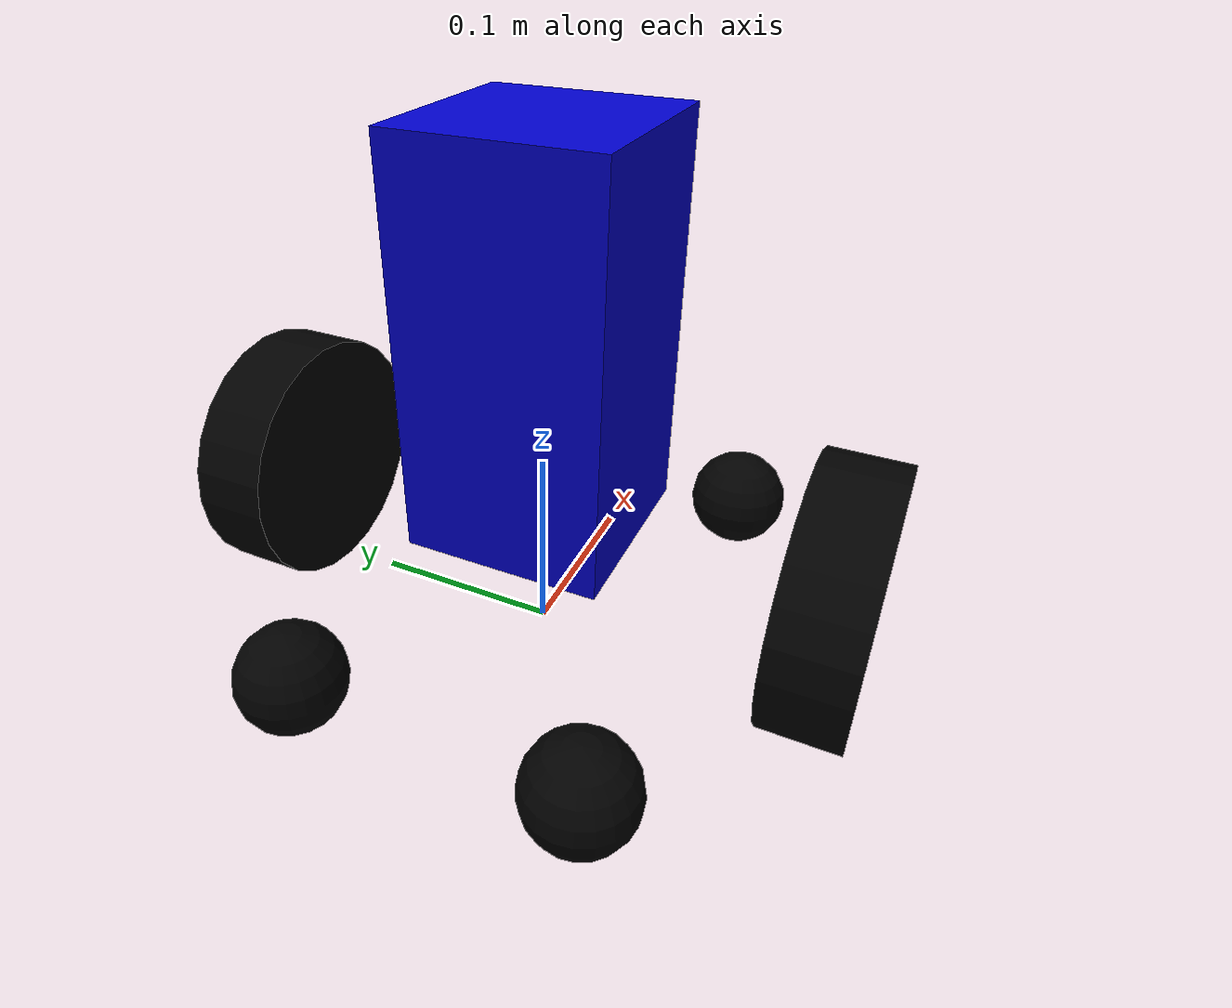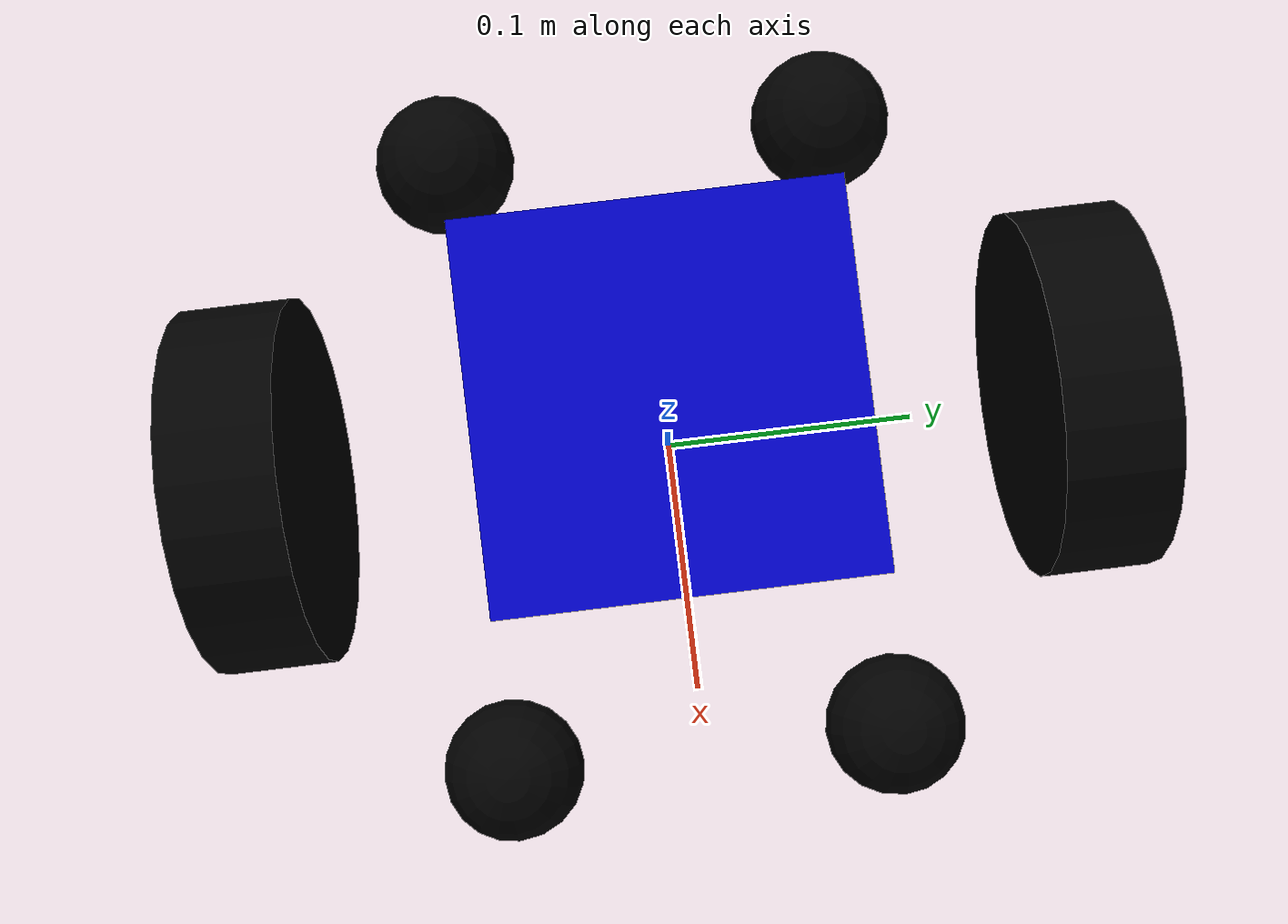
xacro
<robot name="maxbot" xmlns:xacro="http://www.ros.org/wiki/xacro">
    <!-- source en.wikipedia.org/wiki/List_of_moments_of_inertia-->
    <material name="Red">
        <color rgba="1 0 0 1"/>
    </material>
    <material name="Green">
        <color rgba="0 1 0 1"/>
    </material>
    <material name="Blue">
        <color rgba="0 0 0.8 1"/>
    </material>
    <material name="Black">
        <color rgba="0 0 0 1"/>
    </material>
    <material name="White">
        <color rgba="1 1 1 1"/>
    </material>
    <material name="Gray">
        <color rgba="0.8 0.8 0.8 1"/>
    </material>
    <material name="Yellow">
        <color rgba="1 1 0 1"/>
    </material>
    <material name="Orange">
        <color rgba="1 0.5 0 1"/>
    </material>
    <material name="Brown">
        <color rgba="0.6 0.4 0.2 1"/>
    </material>
    <material name="Purple">
        <color rgba="0.5 0 0.5 1"/>
    </material>
    <material name="Cyan">
        <color rgba="0 1 1 1"/>
    </material>
    <!-- xacro property -->
    <xacro:property name="PI" value="3.14159265359"/>
    <xacro:property name="base_link_length" value="0.1" />
    <xacro:property name="base_link_width" value="0.1" />
    <xacro:property name="base_link_height" value="0.2" />
    <xacro:property name="base_link_mass" value="10.0" />
    <xacro:property name="wheel_radius" value="0.0675" />
    <xacro:property name="wheel_length" value="0.04" />
    <xacro:property name="wheel_spacing" value="0.15" />
    <xacro:property name="wheel_mass" value="2.0" />
    <xacro:property name="caster_wheel_radius" value="0.0275" />
    <xacro:property name="caster_wheel_spacing" value="0.24" />
    <xacro:property name="caster_wheel_mass" value="0.5" />
    <link name="base_footprint">
    </link>
    <link name="base_link">
        <visual>
            <origin rpy="0 0 0" xyz="0 0 ${base_link_height / 2}"/>
            <geometry>
                <box size="${base_link_length} ${base_link_width} ${base_link_height}"/>
            </geometry>
            <material name="Blue"/>
        </visual>
        <collision>
            <geometry>
                <box size="${base_link_length} ${base_link_width} ${base_link_height}" />
            </geometry>
            <origin xyz="0.0 0.0 ${base_link_height / 2}" rpy="0.0 0.0 0.0" />
        </collision>
        <xacro:box_inertial_matrix m="${base_link_mass}" l="${base_link_length}" w="${base_link_width}" h="${base_link_height}" />
    </link>
    <!-- gazebo -->
    <gazebo reference="base_link">
        <material>Gazebo/Blue</material>
    </gazebo>
    <joint name="base_joint" type="fixed">
        <parent link="base_footprint" />
        <child link="base_link" />
        <origin xyz="0 0 ${wheel_radius}" />
    </joint>
    <!-- macro add wheel -->
    <xacro:macro name="add_wheel" params="name flag">
        <link name="${name}_wheel">
            <visual>
                <geometry>
                    <cylinder radius="${wheel_radius}" length="${wheel_length}" />
                </geometry>
                <origin xyz="0.0 0.0 0" rpy="${PI / 2} 0.0 0.0" />
                <material name="Black" />
            </visual>
            <collision>
                <geometry>
                    <cylinder radius="${wheel_radius}" length="${wheel_length}" />
                </geometry>
                <origin xyz="0.0 0.0 0.0" rpy="${PI / 2} 0.0 0.0" />
            </collision>
            <xacro:cylinder_inertial_matrix m="${wheel_mass}" r="${wheel_radius}" h="${wheel_length}" />
        </link>
        <!-- gazebo -->
        <gazebo reference="${name}_wheel">
            <material>Gazebo/Black</material>
        </gazebo>
        <joint name="${name}_wheel_joint" type="continuous">
            <parent link="base_link" />
            <child link="${name}_wheel" />
            <origin xyz="0 ${flag * wheel_spacing} 0" />
            <axis xyz="0 1 0" />
        </joint>
    </xacro:macro>
    <xacro:add_wheel name="left" flag="1" />
    <xacro:add_wheel name="right" flag="-1" />
    <!-- macro: add caster wheel -->
    <xacro:macro name="add_caster_wheel" params="id pos_1 pos_2" >
        <link name="caster_wheel_${id}">
            <visual>
                <geometry>
                    <sphere radius="${caster_wheel_radius}" />
                </geometry>
                <origin rpy="0 0 0" xyz="0 0 0"/>
                <material name="Black" />
            </visual>
            <collision>
                <geometry>
                    <sphere radius="${caster_wheel_radius}" />
                </geometry>
                <origin xyz="0 0 0" rpy="0 0 0" />
            </collision>
            <xacro:sphere_inertial_matrix m="${caster_wheel_mass}" r="${caster_wheel_radius}" />
        </link>
        <!-- gazebo -->
        <gazebo reference="caster_wheel_${id}">
            <material>Gazebo/Black</material>
        </gazebo>
        <joint name="caster_wheel_${id}_joint" type="continuous">
            <parent link="base_link" />
            <child link="caster_wheel_${id}" />
            <origin xyz="${0.12 * pos_1} ${0.075 * pos_2} -0.04" />
        </joint>
    </xacro:macro>
    <xacro:add_caster_wheel id="1" pos_1="1" pos_2="1" />
    <xacro:add_caster_wheel id="2" pos_1="1" pos_2="-1" />
    <xacro:add_caster_wheel id="3" pos_1="-1" pos_2="1" />
    <xacro:add_caster_wheel id="4" pos_1="-1" pos_2="-1" />
</robot>
